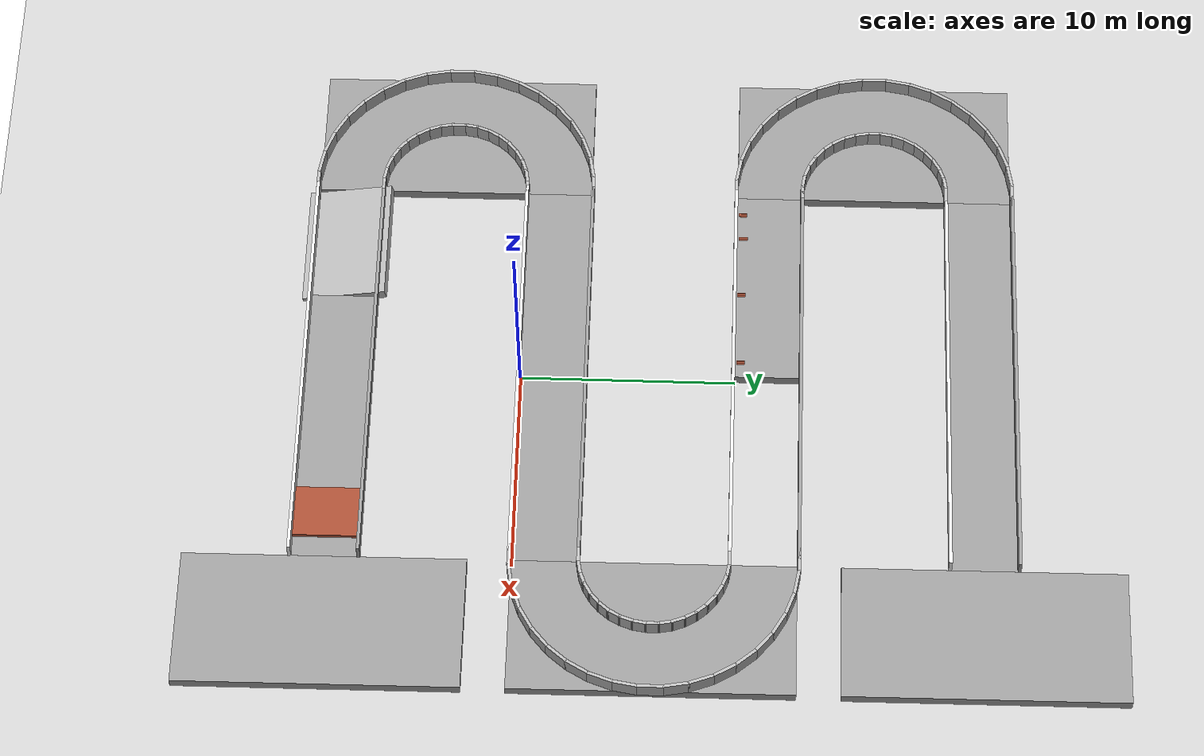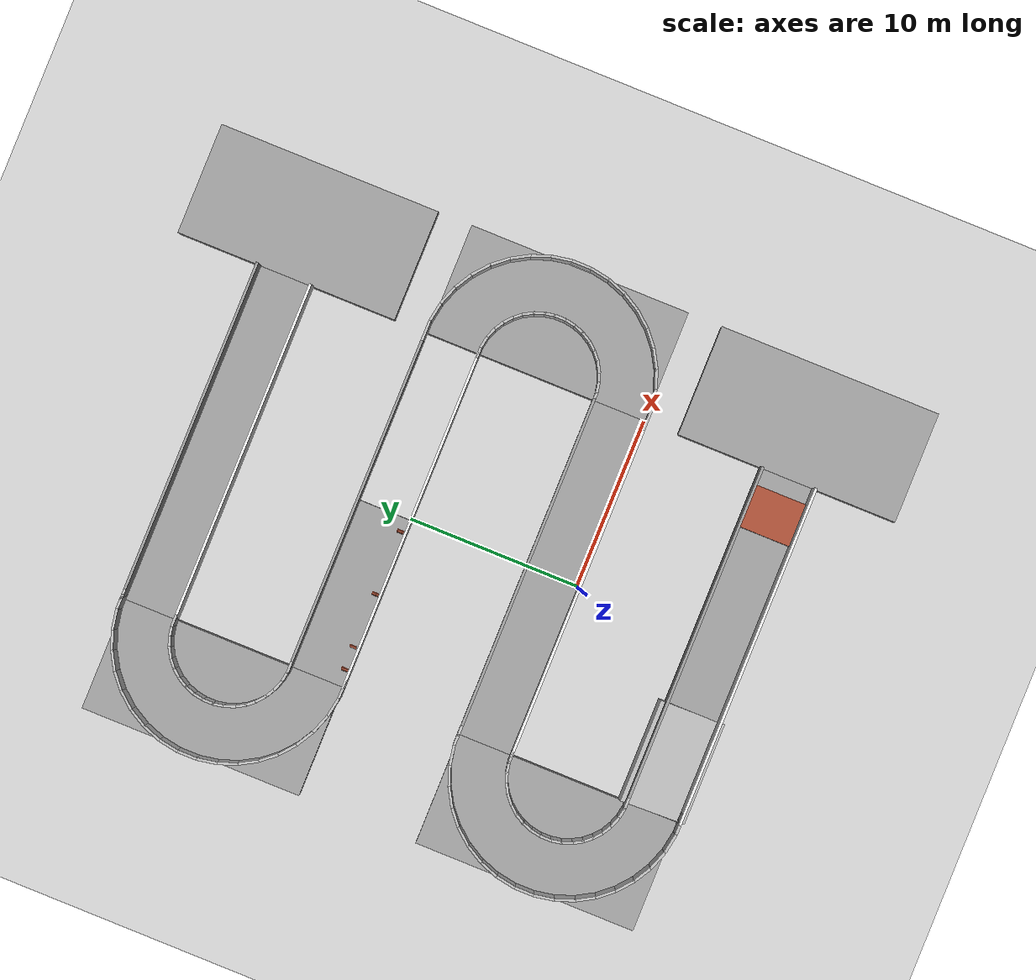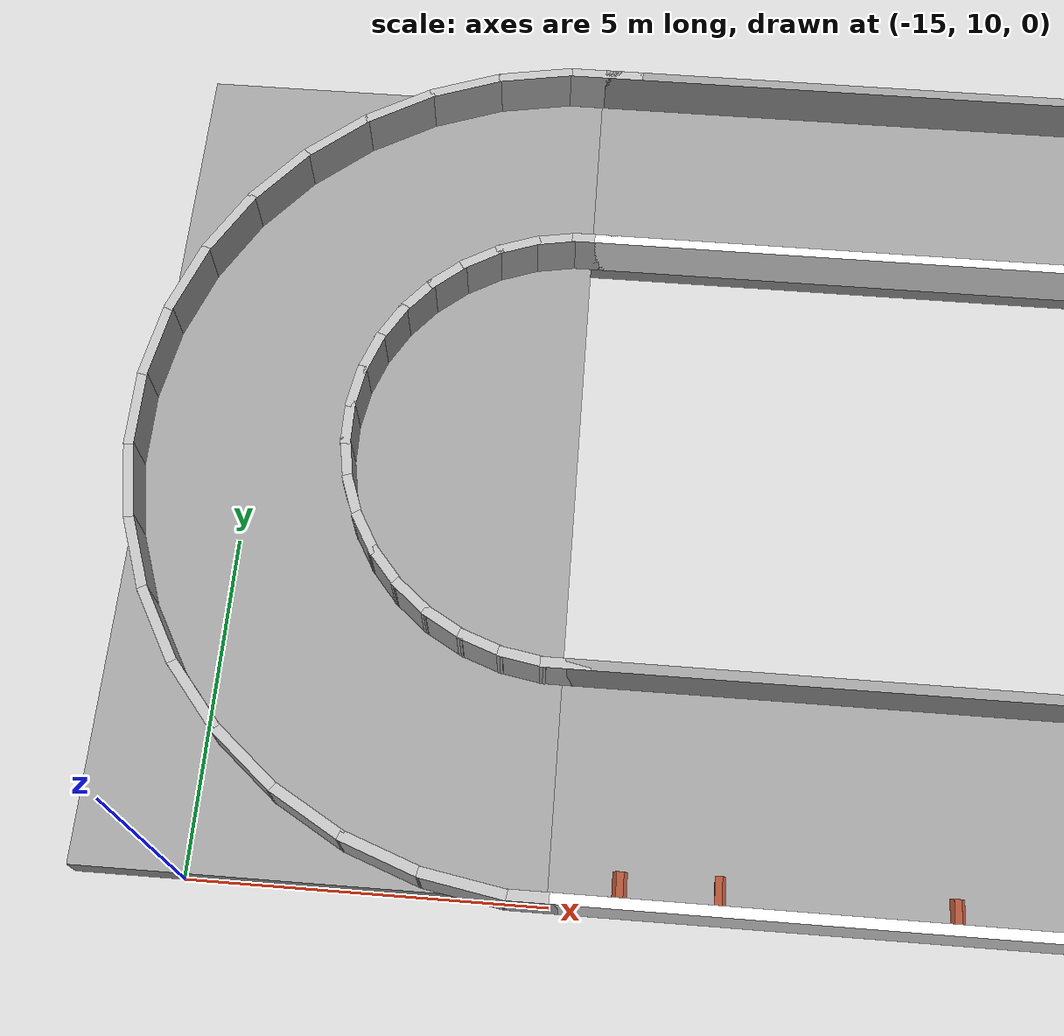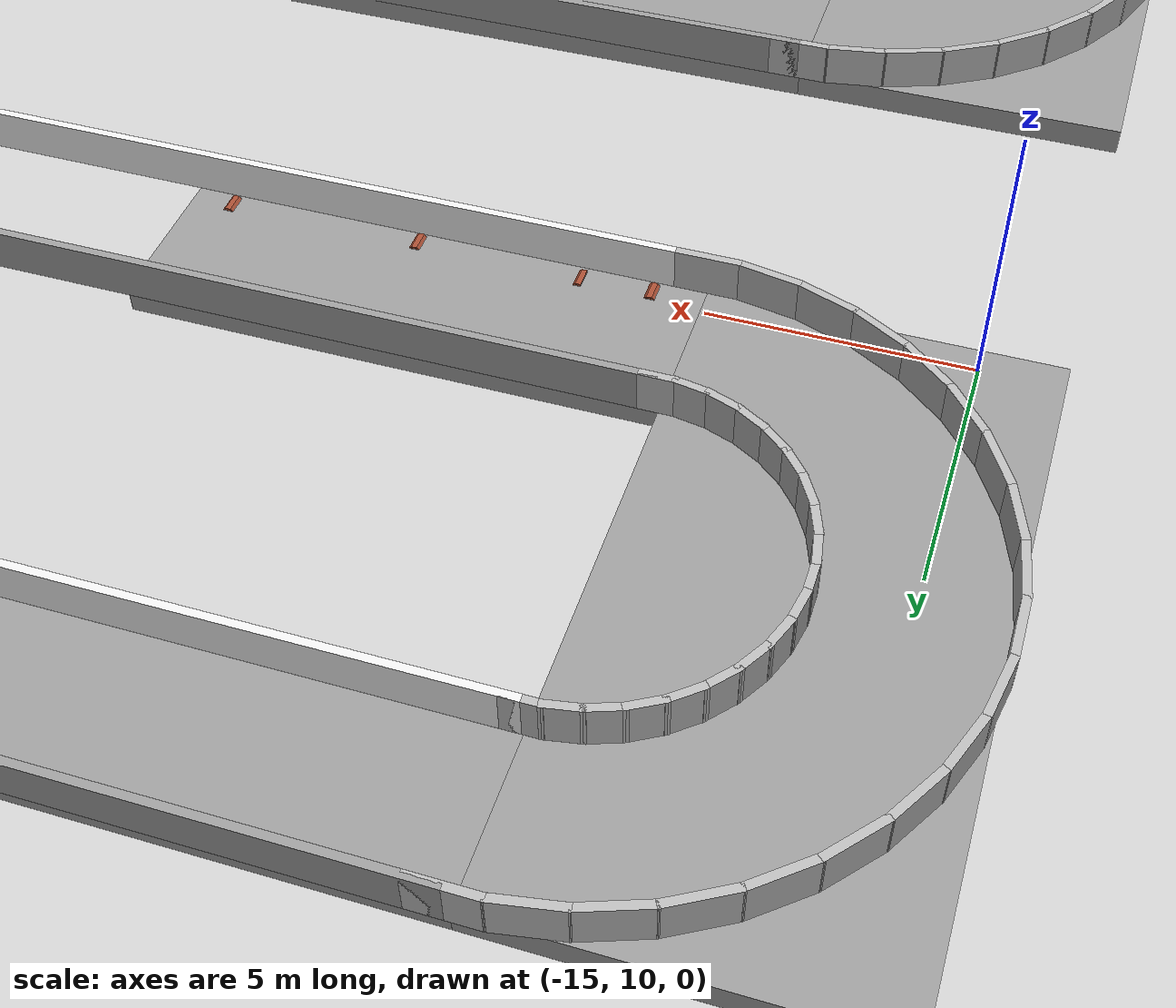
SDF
<sdf version="1.7">
 <world name="default">
  <model name="ground_plane">
   <static>1</static>
   <link name="link">
    <collision name="collision">
     <geometry><plane><normal>0 0 1</normal><size>100 100</size></plane></geometry>
     <surface><friction><ode><mu>100</mu><mu2>50</mu2></ode></friction></surface>
    </collision>
    <visual name="visual">
     <cast_shadows>0</cast_shadows>
     <geometry><plane><normal>0 0 1</normal><size>100 100</size></plane></geometry>
     <material>
      <script><uri>file://media/materials/scripts/gazebo.material</uri><name>Gazebo/Grey</name></script>
     </material>
    </visual>
   </link>
  </model>
  <model name="ika">
   <pose>0 -8.5 0.5 0 -0 0</pose>
   <static>1</static>
   <link name="Wall_1_0">
    <collision name="Wall_4_Collision">
     <geometry><box><size>20 0.15 0.8</size></box></geometry>
     <pose>0 0 0.4 0 -0 0</pose>
    </collision>
    <visual name="Wall_4_Visual">
     <pose>0 0 0.4 0 -0 0</pose>
     <geometry><box><size>20 0.15 0.8</size></box></geometry>
     <material>
      <script><uri>file://media/materials/scripts/gazebo.material</uri><name>Gazebo/Grey</name></script>
      <ambient>1 1 1 1</ambient>
     </material>
     <meta><layer>0</layer></meta>
    </visual>
    <pose>-0 1.575 0 0 -0 0</pose>
   </link>
   <link name="Wall_1_1">
    <collision name="Wall_7_Collision">
     <geometry><box><size>20 0.15 0.8</size></box></geometry>
     <pose>0 0 0.4 0 -0 0</pose>
    </collision>
    <visual name="Wall_7_Visual">
     <pose>0 0 0.4 0 -0 0</pose>
     <geometry><box><size>20 0.15 0.8</size></box></geometry>
     <material>
      <script><uri>file://media/materials/scripts/gazebo.material</uri><name>Gazebo/White</name></script>
      <ambient>1 1 1 1</ambient>
     </material>
     <meta><layer>0</layer></meta>
    </visual>
    <pose>-0 -1.575 0 0 -0 0</pose>
   </link>
   <link name="link_0">
    <pose>-10 11.575 0.4 0 -0 1.5708</pose>
    <collision name="col1"><geometry><box><size>0.15 1.2 0.8</size></box></geometry></collision>
    <visual name="vis1"><geometry><box><size>0.15 1.2 0.8</size></box></geometry></visual>
   </link>
   <link name="link_1">
    <pose>-11.1418 11.4751 0.4 0 -0 1.74533</pose>
    <collision name="col1"><geometry><box><size>0.15 1.2 0.8</size></box></geometry></collision>
    <visual name="vis1"><geometry><box><size>0.15 1.2 0.8</size></box></geometry></visual>
   </link>
   <link name="link_2">
    <pose>-12.2488 11.1785 0.4 0 -0 1.91987</pose>
    <collision name="col1"><geometry><box><size>0.15 1.2 0.8</size></box></geometry></collision>
    <visual name="vis1"><geometry><box><size>0.15 1.2 0.8</size></box></geometry></visual>
   </link>
   <link name="link_3">
    <pose>-13.2875 10.6941 0.4 0 -0 2.0944</pose>
    <collision name="col1"><geometry><box><size>0.15 1.2 0.8</size></box></geometry></collision>
    <visual name="vis1"><geometry><box><size>0.15 1.2 0.8</size></box></geometry></visual>
   </link>
   <link name="link_4">
    <pose>-14.2264 10.0367 0.4 0 -0 2.26893</pose>
    <collision name="col1"><geometry><box><size>0.15 1.2 0.8</size></box></geometry></collision>
    <visual name="vis1"><geometry><box><size>0.15 1.2 0.8</size></box></geometry></visual>
   </link>
   <link name="link_5">
    <pose>-15.0368 9.2263 0.4 0 -0 2.44347</pose>
    <collision name="col1"><geometry><box><size>0.15 1.2 0.8</size></box></geometry></collision>
    <visual name="vis1"><geometry><box><size>0.15 1.2 0.8</size></box></geometry></visual>
   </link>
   <link name="link_6">
    <pose>-15.6941 8.28746 0.4 0 -0 2.618</pose>
    <collision name="col1"><geometry><box><size>0.15 1.2 0.8</size></box></geometry></collision>
    <visual name="vis1"><geometry><box><size>0.15 1.2 0.8</size></box></geometry></visual>
   </link>
   <link name="link_7">
    <pose>-16.1785 7.24874 0.4 0 -0 2.79253</pose>
    <collision name="col1"><geometry><box><size>0.15 1.2 0.8</size></box></geometry></collision>
    <visual name="vis1"><geometry><box><size>0.15 1.2 0.8</size></box></geometry></visual>
   </link>
   <link name="link_8">
    <pose>-16.4751 6.14169 0.4 0 -0 2.96707</pose>
    <collision name="col1"><geometry><box><size>0.15 1.2 0.8</size></box></geometry></collision>
    <visual name="vis1"><geometry><box><size>0.15 1.2 0.8</size></box></geometry></visual>
   </link>
   <link name="link_9">
    <pose>-16.575 4.99995 0.4 0 -0 -3.14159</pose>
    <collision name="col1"><geometry><box><size>0.15 1.2 0.8</size></box></geometry></collision>
    <visual name="vis1"><geometry><box><size>0.15 1.2 0.8</size></box></geometry></visual>
   </link>
   <link name="link_10">
    <pose>-16.4751 3.85821 0.4 0 -0 -2.96705</pose>
    <collision name="col1"><geometry><box><size>0.15 1.2 0.8</size></box></geometry></collision>
    <visual name="vis1"><geometry><box><size>0.15 1.2 0.8</size></box></geometry></visual>
   </link>
   <link name="link_11">
    <pose>-16.1785 2.75117 0.4 0 -0 -2.79252</pose>
    <collision name="col1"><geometry><box><size>0.15 1.2 0.8</size></box></geometry></collision>
    <visual name="vis1"><geometry><box><size>0.15 1.2 0.8</size></box></geometry></visual>
   </link>
   <link name="link_12">
    <pose>-15.6941 1.71245 0.4 0 -0 -2.61799</pose>
    <collision name="col1"><geometry><box><size>0.15 1.2 0.8</size></box></geometry></collision>
    <visual name="vis1"><geometry><box><size>0.15 1.2 0.8</size></box></geometry></visual>
   </link>
   <link name="link_13">
    <pose>-15.0367 0.773626 0.4 0 -0 -2.44345</pose>
    <collision name="col1"><geometry><box><size>0.15 1.2 0.8</size></box></geometry></collision>
    <visual name="vis1"><geometry><box><size>0.15 1.2 0.8</size></box></geometry></visual>
   </link>
   <link name="link_14">
    <pose>-14.2263 -0.036782 0.4 0 -0 -2.26892</pose>
    <collision name="col1"><geometry><box><size>0.15 1.2 0.8</size></box></geometry></collision>
    <visual name="vis1"><geometry><box><size>0.15 1.2 0.8</size></box></geometry></visual>
   </link>
   <link name="link_15">
    <pose>-13.2874 -0.694149 0.4 0 -0 -2.09438</pose>
    <collision name="col1"><geometry><box><size>0.15 1.2 0.8</size></box></geometry></collision>
    <visual name="vis1"><geometry><box><size>0.15 1.2 0.8</size></box></geometry></visual>
   </link>
   <link name="link_16">
    <pose>-12.2487 -1.1785 0.4 0 -0 -1.91985</pose>
    <collision name="col1"><geometry><box><size>0.15 1.2 0.8</size></box></geometry></collision>
    <visual name="vis1"><geometry><box><size>0.15 1.2 0.8</size></box></geometry></visual>
   </link>
   <link name="link_17">
    <pose>-11.1417 -1.47512 0.4 0 -0 -1.74532</pose>
    <collision name="col1"><geometry><box><size>0.15 1.2 0.8</size></box></geometry></collision>
    <visual name="vis1"><geometry><box><size>0.15 1.2 0.8</size></box></geometry></visual>
   </link>
   <link name="link_18">
    <pose>-9.99993 -1.575 0.4 0 -0 -1.57079</pose>
    <collision name="col1"><geometry><box><size>0.15 1.2 0.8</size></box></geometry></collision>
    <visual name="vis1"><geometry><box><size>0.15 1.2 0.8</size></box></geometry></visual>
   </link>
   <link name="link_s1_0">
    <pose>-10 8.425 0.4 0 -0 1.5708</pose>
    <collision name="col1"><geometry><box><size>0.15 0.7 0.8</size></box></geometry></collision>
    <visual name="vis1"><geometry><box><size>0.15 0.7 0.8</size></box></geometry></visual>
   </link>
   <link name="link_s1_1">
    <pose>-10.5948 8.37296 0.4 0 -0 1.74533</pose>
    <collision name="col1"><geometry><box><size>0.15 0.7 0.8</size></box></geometry></collision>
    <visual name="vis1"><geometry><box><size>0.15 0.7 0.8</size></box></geometry></visual>
   </link>
   <link name="link_s1_2">
    <pose>-11.1714 8.21844 0.4 0 -0 1.91987</pose>
    <collision name="col1"><geometry><box><size>0.15 0.7 0.8</size></box></geometry></collision>
    <visual name="vis1"><geometry><box><size>0.15 0.7 0.8</size></box></geometry></visual>
   </link>
   <link name="link_s1_3">
    <pose>-11.7125 7.96613 0.4 0 -0 2.0944</pose>
    <collision name="col1"><geometry><box><size>0.15 0.7 0.8</size></box></geometry></collision>
    <visual name="vis1"><geometry><box><size>0.15 0.7 0.8</size></box></geometry></visual>
   </link>
   <link name="link_s1_4">
    <pose>-12.2016 7.62369 0.4 0 -0 2.26893</pose>
    <collision name="col1"><geometry><box><size>0.15 0.7 0.8</size></box></geometry></collision>
    <visual name="vis1"><geometry><box><size>0.15 0.7 0.8</size></box></geometry></visual>
   </link>
   <link name="link_s1_5">
    <pose>-12.6237 7.20153 0.4 0 -0 2.44347</pose>
    <collision name="col1"><geometry><box><size>0.15 0.7 0.8</size></box></geometry></collision>
    <visual name="vis1"><geometry><box><size>0.15 0.7 0.8</size></box></geometry></visual>
   </link>
   <link name="link_s1_6">
    <pose>-12.9661 6.71248 0.4 0 -0 2.618</pose>
    <collision name="col1"><geometry><box><size>0.15 0.7 0.8</size></box></geometry></collision>
    <visual name="vis1"><geometry><box><size>0.15 0.7 0.8</size></box></geometry></visual>
   </link>
   <link name="link_s1_7">
    <pose>-13.2185 6.1714 0.4 0 -0 2.79253</pose>
    <collision name="col1"><geometry><box><size>0.15 0.7 0.8</size></box></geometry></collision>
    <visual name="vis1"><geometry><box><size>0.15 0.7 0.8</size></box></geometry></visual>
   </link>
   <link name="link_s1_8">
    <pose>-13.373 5.59472 0.4 0 -0 2.96707</pose>
    <collision name="col1"><geometry><box><size>0.15 0.7 0.8</size></box></geometry></collision>
    <visual name="vis1"><geometry><box><size>0.15 0.7 0.8</size></box></geometry></visual>
   </link>
   <link name="link_s1_9">
    <pose>-13.425 4.99998 0.4 0 -0 -3.14159</pose>
    <collision name="col1"><geometry><box><size>0.15 0.7 0.8</size></box></geometry></collision>
    <visual name="vis1"><geometry><box><size>0.15 0.7 0.8</size></box></geometry></visual>
   </link>
   <link name="link_s1_10">
    <pose>-13.373 4.40523 0.4 0 -0 -2.96705</pose>
    <collision name="col1"><geometry><box><size>0.15 0.7 0.8</size></box></geometry></collision>
    <visual name="vis1"><geometry><box><size>0.15 0.7 0.8</size></box></geometry></visual>
   </link>
   <link name="link_s1_11">
    <pose>-13.2184 3.82856 0.4 0 -0 -2.79252</pose>
    <collision name="col1"><geometry><box><size>0.15 0.7 0.8</size></box></geometry></collision>
    <visual name="vis1"><geometry><box><size>0.15 0.7 0.8</size></box></geometry></visual>
   </link>
   <link name="link_s1_12">
    <pose>-12.9661 3.28748 0.4 0 -0 -2.61799</pose>
    <collision name="col1"><geometry><box><size>0.15 0.7 0.8</size></box></geometry></collision>
    <visual name="vis1"><geometry><box><size>0.15 0.7 0.8</size></box></geometry></visual>
   </link>
   <link name="link_s1_13">
    <pose>-12.6237 2.79843 0.4 0 -0 -2.44345</pose>
    <collision name="col1"><geometry><box><size>0.15 0.7 0.8</size></box></geometry></collision>
    <visual name="vis1"><geometry><box><size>0.15 0.7 0.8</size></box></geometry></visual>
   </link>
   <link name="link_s1_14">
    <pose>-12.2015 2.37628 0.4 0 -0 -2.26892</pose>
    <collision name="col1"><geometry><box><size>0.15 0.7 0.8</size></box></geometry></collision>
    <visual name="vis1"><geometry><box><size>0.15 0.7 0.8</size></box></geometry></visual>
   </link>
   <link name="link_s1_15">
    <pose>-11.7125 2.03385 0.4 0 -0 -2.09438</pose>
    <collision name="col1"><geometry><box><size>0.15 0.7 0.8</size></box></geometry></collision>
    <visual name="vis1"><geometry><box><size>0.15 0.7 0.8</size></box></geometry></visual>
   </link>
   <link name="link_s1_16">
    <pose>-11.1714 1.78154 0.4 0 -0 -1.91985</pose>
    <collision name="col1"><geometry><box><size>0.15 0.7 0.8</size></box></geometry></collision>
    <visual name="vis1"><geometry><box><size>0.15 0.7 0.8</size></box></geometry></visual>
   </link>
   <link name="link_s1_17">
    <pose>-10.5947 1.62703 0.4 0 -0 -1.74532</pose>
    <collision name="col1"><geometry><box><size>0.15 0.7 0.8</size></box></geometry></collision>
    <visual name="vis1"><geometry><box><size>0.15 0.7 0.8</size></box></geometry></visual>
   </link>
   <link name="link_s1_18">
    <pose>-9.99996 1.575 0.4 0 -0 -1.57079</pose>
    <collision name="col1"><geometry><box><size>0.15 0.7 0.8</size></box></geometry></collision>
    <visual name="vis1"><geometry><box><size>0.15 0.7 0.8</size></box></geometry></visual>
   </link>
   <link name="Wall_2_0">
    <pose>-0 11.575 0 0 -0 0</pose>
    <collision name="Wall_4_Collision">
     <geometry><box><size>20 0.15 0.8</size></box></geometry>
     <pose>0 0 0.4 0 -0 0</pose>
    </collision>
    <visual name="Wall_4_Visual">
     <pose>0 0 0.4 0 -0 0</pose>
     <geometry><box><size>20 0.15 0.8</size></box></geometry>
     <material>
      <script><uri>file://media/materials/scripts/gazebo.material</uri><name>Gazebo/Grey</name></script>
      <ambient>1 1 1 1</ambient>
     </material>
     <meta><layer>0</layer></meta>
    </visual>
   </link>
   <link name="Wall_2_1">
    <pose>-0 8.425 0 0 -0 0</pose>
    <collision name="Wall_7_Collision">
     <geometry><box><size>20 0.15 0.8</size></box></geometry>
     <pose>0 0 0.4 0 -0 0</pose>
    </collision>
    <visual name="Wall_7_Visual">
     <pose>0 0 0.4 0 -0 0</pose>
     <geometry><box><size>20 0.15 0.8</size></box></geometry>
     <material>
      <script><uri>file://media/materials/scripts/gazebo.material</uri><name>Gazebo/White</name></script>
      <ambient>1 1 1 1</ambient>
     </material>
     <meta><layer>0</layer></meta>
    </visual>
   </link>
   <link name="link_s2_0">
    <pose>9.99999 11.575 0.4 0 0 -1.5708</pose>
    <collision name="col1"><geometry><box><size>0.15 0.7 0.8</size></box></geometry></collision>
    <visual name="vis1"><geometry><box><size>0.15 0.7 0.8</size></box></geometry></visual>
   </link>
   <link name="link_s2_1">
    <pose>10.5947 11.627 0.4 0 0 -1.39627</pose>
    <collision name="col1"><geometry><box><size>0.15 0.7 0.8</size></box></geometry></collision>
    <visual name="vis1"><geometry><box><size>0.15 0.7 0.8</size></box></geometry></visual>
   </link>
   <link name="link_s2_2">
    <pose>11.1714 11.7815 0.4 0 0 -1.22173</pose>
    <collision name="col1"><geometry><box><size>0.15 0.7 0.8</size></box></geometry></collision>
    <visual name="vis1"><geometry><box><size>0.15 0.7 0.8</size></box></geometry></visual>
   </link>
   <link name="link_s2_3">
    <pose>11.7125 12.0339 0.4 0 0 -1.0472</pose>
    <collision name="col1"><geometry><box><size>0.15 0.7 0.8</size></box></geometry></collision>
    <visual name="vis1"><geometry><box><size>0.15 0.7 0.8</size></box></geometry></visual>
   </link>
   <link name="link_s2_4">
    <pose>12.2015 12.3763 0.4 0 0 -0.872667</pose>
    <collision name="col1"><geometry><box><size>0.15 0.7 0.8</size></box></geometry></collision>
    <visual name="vis1"><geometry><box><size>0.15 0.7 0.8</size></box></geometry></visual>
   </link>
   <link name="link_s2_5">
    <pose>12.6237 12.7984 0.4 0 0 -0.698133</pose>
    <collision name="col1"><geometry><box><size>0.15 0.7 0.8</size></box></geometry></collision>
    <visual name="vis1"><geometry><box><size>0.15 0.7 0.8</size></box></geometry></visual>
   </link>
   <link name="link_s2_6">
    <pose>12.9661 13.2875 0.4 0 0 -0.5236</pose>
    <collision name="col1"><geometry><box><size>0.15 0.7 0.8</size></box></geometry></collision>
    <visual name="vis1"><geometry><box><size>0.15 0.7 0.8</size></box></geometry></visual>
   </link>
   <link name="link_s2_7">
    <pose>13.2184 13.8286 0.4 0 0 -0.349067</pose>
    <collision name="col1"><geometry><box><size>0.15 0.7 0.8</size></box></geometry></collision>
    <visual name="vis1"><geometry><box><size>0.15 0.7 0.8</size></box></geometry></visual>
   </link>
   <link name="link_s2_8">
    <pose>13.373 14.4053 0.4 0 0 -0.174533</pose>
    <collision name="col1"><geometry><box><size>0.15 0.7 0.8</size></box></geometry></collision>
    <visual name="vis1"><geometry><box><size>0.15 0.7 0.8</size></box></geometry></visual>
   </link>
   <link name="link_s2_9">
    <pose>13.425 15 0.4 0 -0 0</pose>
    <collision name="col1"><geometry><box><size>0.15 0.7 0.8</size></box></geometry></collision>
    <visual name="vis1"><geometry><box><size>0.15 0.7 0.8</size></box></geometry></visual>
   </link>
   <link name="link_s2_10">
    <pose>13.373 15.5947 0.4 0 -0 0.174533</pose>
    <collision name="col1"><geometry><box><size>0.15 0.7 0.8</size></box></geometry></collision>
    <visual name="vis1"><geometry><box><size>0.15 0.7 0.8</size></box></geometry></visual>
   </link>
   <link name="link_s2_11">
    <pose>13.2184 16.1714 0.4 0 -0 0.349067</pose>
    <collision name="col1"><geometry><box><size>0.15 0.7 0.8</size></box></geometry></collision>
    <visual name="vis1"><geometry><box><size>0.15 0.7 0.8</size></box></geometry></visual>
   </link>
   <link name="link_s2_12">
    <pose>12.9661 16.7125 0.4 0 -0 0.5236</pose>
    <collision name="col1"><geometry><box><size>0.15 0.7 0.8</size></box></geometry></collision>
    <visual name="vis1"><geometry><box><size>0.15 0.7 0.8</size></box></geometry></visual>
   </link>
   <link name="link_s2_13">
    <pose>12.6237 17.2016 0.4 0 -0 0.698133</pose>
    <collision name="col1"><geometry><box><size>0.15 0.7 0.8</size></box></geometry></collision>
    <visual name="vis1"><geometry><box><size>0.15 0.7 0.8</size></box></geometry></visual>
   </link>
   <link name="link_s2_14">
    <pose>12.2015 17.6237 0.4 0 -0 0.872667</pose>
    <collision name="col1"><geometry><box><size>0.15 0.7 0.8</size></box></geometry></collision>
    <visual name="vis1"><geometry><box><size>0.15 0.7 0.8</size></box></geometry></visual>
   </link>
   <link name="link_s2_15">
    <pose>11.7125 17.9661 0.4 0 -0 1.0472</pose>
    <collision name="col1"><geometry><box><size>0.15 0.7 0.8</size></box></geometry></collision>
    <visual name="vis1"><geometry><box><size>0.15 0.7 0.8</size></box></geometry></visual>
   </link>
   <link name="link_s2_16">
    <pose>11.1714 18.2185 0.4 0 -0 1.22173</pose>
    <collision name="col1"><geometry><box><size>0.15 0.7 0.8</size></box></geometry></collision>
    <visual name="vis1"><geometry><box><size>0.15 0.7 0.8</size></box></geometry></visual>
   </link>
   <link name="link_s2_17">
    <pose>10.5947 18.373 0.4 0 -0 1.39627</pose>
    <collision name="col1"><geometry><box><size>0.15 0.7 0.8</size></box></geometry></collision>
    <visual name="vis1"><geometry><box><size>0.15 0.7 0.8</size></box></geometry></visual>
   </link>
   <link name="link_s2_18">
    <pose>9.99999 18.425 0.4 0 -0 1.5708</pose>
    <collision name="col1"><geometry><box><size>0.15 0.7 0.8</size></box></geometry></collision>
    <visual name="vis1"><geometry><box><size>0.15 0.7 0.8</size></box></geometry></visual>
   </link>
   <link name="link_l2_0">
    <pose>9.99998 8.425 0.4 0 0 -1.5708</pose>
    <collision name="col1"><geometry><box><size>0.15 1.2 0.8</size></box></geometry></collision>
    <visual name="vis1"><geometry><box><size>0.15 1.2 0.8</size></box></geometry></visual>
   </link>
   <link name="link_l2_1">
    <pose>11.1417 8.52488 0.4 0 0 -1.39627</pose>
    <collision name="col1"><geometry><box><size>0.15 1.2 0.8</size></box></geometry></collision>
    <visual name="vis1"><geometry><box><size>0.15 1.2 0.8</size></box></geometry></visual>
   </link>
   <link name="link_l2_2">
    <pose>12.2488 8.82151 0.4 0 0 -1.22173</pose>
    <collision name="col1"><geometry><box><size>0.15 1.2 0.8</size></box></geometry></collision>
    <visual name="vis1"><geometry><box><size>0.15 1.2 0.8</size></box></geometry></visual>
   </link>
   <link name="link_l2_3">
    <pose>13.2875 9.30588 0.4 0 0 -1.0472</pose>
    <collision name="col1"><geometry><box><size>0.15 1.2 0.8</size></box></geometry></collision>
    <visual name="vis1"><geometry><box><size>0.15 1.2 0.8</size></box></geometry></visual>
   </link>
   <link name="link_l2_4">
    <pose>14.2263 9.96325 0.4 0 0 -0.872667</pose>
    <collision name="col1"><geometry><box><size>0.15 1.2 0.8</size></box></geometry></collision>
    <visual name="vis1"><geometry><box><size>0.15 1.2 0.8</size></box></geometry></visual>
   </link>
   <link name="link_l2_5">
    <pose>15.0367 10.7737 0.4 0 0 -0.698133</pose>
    <collision name="col1"><geometry><box><size>0.15 1.2 0.8</size></box></geometry></collision>
    <visual name="vis1"><geometry><box><size>0.15 1.2 0.8</size></box></geometry></visual>
   </link>
   <link name="link_l2_6">
    <pose>15.6941 11.7125 0.4 0 0 -0.5236</pose>
    <collision name="col1"><geometry><box><size>0.15 1.2 0.8</size></box></geometry></collision>
    <visual name="vis1"><geometry><box><size>0.15 1.2 0.8</size></box></geometry></visual>
   </link>
   <link name="link_l2_7">
    <pose>16.1785 12.7512 0.4 0 0 -0.349067</pose>
    <collision name="col1"><geometry><box><size>0.15 1.2 0.8</size></box></geometry></collision>
    <visual name="vis1"><geometry><box><size>0.15 1.2 0.8</size></box></geometry></visual>
   </link>
   <link name="link_l2_8">
    <pose>16.4751 13.8583 0.4 0 0 -0.174533</pose>
    <collision name="col1"><geometry><box><size>0.15 1.2 0.8</size></box></geometry></collision>
    <visual name="vis1"><geometry><box><size>0.15 1.2 0.8</size></box></geometry></visual>
   </link>
   <link name="link_l2_9">
    <pose>16.575 15 0.4 0 -0 0</pose>
    <collision name="col1"><geometry><box><size>0.15 1.2 0.8</size></box></geometry></collision>
    <visual name="vis1"><geometry><box><size>0.15 1.2 0.8</size></box></geometry></visual>
   </link>
   <link name="link_l2_10">
    <pose>16.4751 16.1417 0.4 0 -0 0.174533</pose>
    <collision name="col1"><geometry><box><size>0.15 1.2 0.8</size></box></geometry></collision>
    <visual name="vis1"><geometry><box><size>0.15 1.2 0.8</size></box></geometry></visual>
   </link>
   <link name="link_l2_11">
    <pose>16.1785 17.2488 0.4 0 -0 0.349067</pose>
    <collision name="col1"><geometry><box><size>0.15 1.2 0.8</size></box></geometry></collision>
    <visual name="vis1"><geometry><box><size>0.15 1.2 0.8</size></box></geometry></visual>
   </link>
   <link name="link_l2_12">
    <pose>15.6941 18.2875 0.4 0 -0 0.5236</pose>
    <collision name="col1"><geometry><box><size>0.15 1.2 0.8</size></box></geometry></collision>
    <visual name="vis1"><geometry><box><size>0.15 1.2 0.8</size></box></geometry></visual>
   </link>
   <link name="link_l2_13">
    <pose>15.0367 19.2263 0.4 0 -0 0.698133</pose>
    <collision name="col1"><geometry><box><size>0.15 1.2 0.8</size></box></geometry></collision>
    <visual name="vis1"><geometry><box><size>0.15 1.2 0.8</size></box></geometry></visual>
   </link>
   <link name="link_l2_14">
    <pose>14.2263 20.0368 0.4 0 -0 0.872667</pose>
    <collision name="col1"><geometry><box><size>0.15 1.2 0.8</size></box></geometry></collision>
    <visual name="vis1"><geometry><box><size>0.15 1.2 0.8</size></box></geometry></visual>
   </link>
   <link name="link_l2_15">
    <pose>13.2875 20.6941 0.4 0 -0 1.0472</pose>
    <collision name="col1"><geometry><box><size>0.15 1.2 0.8</size></box></geometry></collision>
    <visual name="vis1"><geometry><box><size>0.15 1.2 0.8</size></box></geometry></visual>
   </link>
   <link name="link_l2_16">
    <pose>12.2488 21.1785 0.4 0 -0 1.22173</pose>
    <collision name="col1"><geometry><box><size>0.15 1.2 0.8</size></box></geometry></collision>
    <visual name="vis1"><geometry><box><size>0.15 1.2 0.8</size></box></geometry></visual>
   </link>
   <link name="link_l2_17">
    <pose>11.1417 21.4751 0.4 0 -0 1.39627</pose>
    <collision name="col1"><geometry><box><size>0.15 1.2 0.8</size></box></geometry></collision>
    <visual name="vis1"><geometry><box><size>0.15 1.2 0.8</size></box></geometry></visual>
   </link>
   <link name="link_l2_18">
    <pose>9.99998 21.575 0.4 0 -0 1.5708</pose>
    <collision name="col1"><geometry><box><size>0.15 1.2 0.8</size></box></geometry></collision>
    <visual name="vis1"><geometry><box><size>0.15 1.2 0.8</size></box></geometry></visual>
   </link>
   <link name="Wall_3_0">
    <pose>-0 21.575 0 0 -0 0</pose>
    <collision name="Wall_4_Collision">
     <geometry><box><size>20 0.15 0.8</size></box></geometry>
     <pose>0 0 0.4 0 -0 0</pose>
    </collision>
    <visual name="Wall_4_Visual">
     <pose>0 0 0.4 0 -0 0</pose>
     <geometry><box><size>20 0.15 0.8</size></box></geometry>
     <material>
      <script><uri>file://media/materials/scripts/gazebo.material</uri><name>Gazebo/Grey</name></script>
      <ambient>1 1 1 1</ambient>
     </material>
     <meta><layer>0</layer></meta>
    </visual>
   </link>
   <link name="Wall_3_1">
    <pose>-0 18.425 0 0 -0 0</pose>
    <collision name="Wall_7_Collision">
     <geometry><box><size>20 0.15 0.8</size></box></geometry>
     <pose>0 0 0.4 0 -0 0</pose>
    </collision>
    <visual name="Wall_7_Visual">
     <pose>0 0 0.4 0 -0 0</pose>
     <geometry><box><size>20 0.15 0.8</size></box></geometry>
     <material>
      <script><uri>file://media/materials/scripts/gazebo.material</uri><name>Gazebo/White</name></script>
      <ambient>1 1 1 1</ambient>
     </material>
     <meta><layer>0</layer></meta>
    </visual>
   </link>
   <link name="link_l3_0">
    <pose>-10 31.575 0.4 0 -0 1.5708</pose>
    <collision name="col1"><geometry><box><size>0.15 1.2 0.8</size></box></geometry></collision>
    <visual name="vis1"><geometry><box><size>0.15 1.2 0.8</size></box></geometry></visual>
   </link>
   <link name="link_l3_1">
    <pose>-11.1418 31.4751 0.4 0 -0 1.74533</pose>
    <collision name="col1"><geometry><box><size>0.15 1.2 0.8</size></box></geometry></collision>
    <visual name="vis1"><geometry><box><size>0.15 1.2 0.8</size></box></geometry></visual>
   </link>
   <link name="link_l3_2">
    <pose>-12.2488 31.1785 0.4 0 -0 1.91987</pose>
    <collision name="col1"><geometry><box><size>0.15 1.2 0.8</size></box></geometry></collision>
    <visual name="vis1"><geometry><box><size>0.15 1.2 0.8</size></box></geometry></visual>
   </link>
   <link name="link_l3_3">
    <pose>-13.2875 30.6941 0.4 0 -0 2.0944</pose>
    <collision name="col1"><geometry><box><size>0.15 1.2 0.8</size></box></geometry></collision>
    <visual name="vis1"><geometry><box><size>0.15 1.2 0.8</size></box></geometry></visual>
   </link>
   <link name="link_l3_4">
    <pose>-14.2264 30.0367 0.4 0 -0 2.26893</pose>
    <collision name="col1"><geometry><box><size>0.15 1.2 0.8</size></box></geometry></collision>
    <visual name="vis1"><geometry><box><size>0.15 1.2 0.8</size></box></geometry></visual>
   </link>
   <link name="link_l3_5">
    <pose>-15.0368 29.2263 0.4 0 -0 2.44347</pose>
    <collision name="col1"><geometry><box><size>0.15 1.2 0.8</size></box></geometry></collision>
    <visual name="vis1"><geometry><box><size>0.15 1.2 0.8</size></box></geometry></visual>
   </link>
   <link name="link_l3_6">
    <pose>-15.6941 28.2875 0.4 0 -0 2.618</pose>
    <collision name="col1"><geometry><box><size>0.15 1.2 0.8</size></box></geometry></collision>
    <visual name="vis1"><geometry><box><size>0.15 1.2 0.8</size></box></geometry></visual>
   </link>
   <link name="link_l3_7">
    <pose>-16.1785 27.2487 0.4 0 -0 2.79253</pose>
    <collision name="col1"><geometry><box><size>0.15 1.2 0.8</size></box></geometry></collision>
    <visual name="vis1"><geometry><box><size>0.15 1.2 0.8</size></box></geometry></visual>
   </link>
   <link name="link_l3_8">
    <pose>-16.4751 26.1417 0.4 0 -0 2.96707</pose>
    <collision name="col1"><geometry><box><size>0.15 1.2 0.8</size></box></geometry></collision>
    <visual name="vis1"><geometry><box><size>0.15 1.2 0.8</size></box></geometry></visual>
   </link>
   <link name="link_l3_9">
    <pose>-16.575 25 0.4 0 -0 -3.14159</pose>
    <collision name="col1"><geometry><box><size>0.15 1.2 0.8</size></box></geometry></collision>
    <visual name="vis1"><geometry><box><size>0.15 1.2 0.8</size></box></geometry></visual>
   </link>
   <link name="link_l3_10">
    <pose>-16.4751 23.8582 0.4 0 -0 -2.96705</pose>
    <collision name="col1"><geometry><box><size>0.15 1.2 0.8</size></box></geometry></collision>
    <visual name="vis1"><geometry><box><size>0.15 1.2 0.8</size></box></geometry></visual>
   </link>
   <link name="link_l3_11">
    <pose>-16.1785 22.7512 0.4 0 -0 -2.79252</pose>
    <collision name="col1"><geometry><box><size>0.15 1.2 0.8</size></box></geometry></collision>
    <visual name="vis1"><geometry><box><size>0.15 1.2 0.8</size></box></geometry></visual>
   </link>
   <link name="link_l3_12">
    <pose>-15.6941 21.7125 0.4 0 -0 -2.61799</pose>
    <collision name="col1"><geometry><box><size>0.15 1.2 0.8</size></box></geometry></collision>
    <visual name="vis1"><geometry><box><size>0.15 1.2 0.8</size></box></geometry></visual>
   </link>
   <link name="link_l3_13">
    <pose>-15.0367 20.7736 0.4 0 -0 -2.44345</pose>
    <collision name="col1"><geometry><box><size>0.15 1.2 0.8</size></box></geometry></collision>
    <visual name="vis1"><geometry><box><size>0.15 1.2 0.8</size></box></geometry></visual>
   </link>
   <link name="link_l3_14">
    <pose>-14.2263 19.9632 0.4 0 -0 -2.26892</pose>
    <collision name="col1"><geometry><box><size>0.15 1.2 0.8</size></box></geometry></collision>
    <visual name="vis1"><geometry><box><size>0.15 1.2 0.8</size></box></geometry></visual>
   </link>
   <link name="link_l3_15">
    <pose>-13.2874 19.3059 0.4 0 -0 -2.09438</pose>
    <collision name="col1"><geometry><box><size>0.15 1.2 0.8</size></box></geometry></collision>
    <visual name="vis1"><geometry><box><size>0.15 1.2 0.8</size></box></geometry></visual>
   </link>
   <link name="link_l3_16">
    <pose>-12.2487 18.8215 0.4 0 -0 -1.91985</pose>
    <collision name="col1"><geometry><box><size>0.15 1.2 0.8</size></box></geometry></collision>
    <visual name="vis1"><geometry><box><size>0.15 1.2 0.8</size></box></geometry></visual>
   </link>
   <link name="link_l3_17">
    <pose>-11.1417 18.5249 0.4 0 -0 -1.74532</pose>
    <collision name="col1"><geometry><box><size>0.15 1.2 0.8</size></box></geometry></collision>
    <visual name="vis1"><geometry><box><size>0.15 1.2 0.8</size></box></geometry></visual>
   </link>
   <link name="link_l3_18">
    <pose>-9.99993 18.425 0.4 0 -0 -1.57079</pose>
    <collision name="col1"><geometry><box><size>0.15 1.2 0.8</size></box></geometry></collision>
    <visual name="vis1"><geometry><box><size>0.15 1.2 0.8</size></box></geometry></visual>
   </link>
   <link name="link_s3_0">
    <pose>-10 28.425 0.4 0 -0 1.5708</pose>
    <collision name="col1"><geometry><box><size>0.15 0.7 0.8</size></box></geometry></collision>
    <visual name="vis1"><geometry><box><size>0.15 0.7 0.8</size></box></geometry></visual>
   </link>
   <link name="link_s3_1">
    <pose>-10.5948 28.373 0.4 0 -0 1.74533</pose>
    <collision name="col1"><geometry><box><size>0.15 0.7 0.8</size></box></geometry></collision>
    <visual name="vis1"><geometry><box><size>0.15 0.7 0.8</size></box></geometry></visual>
   </link>
   <link name="link_s3_2">
    <pose>-11.1714 28.2184 0.4 0 -0 1.91987</pose>
    <collision name="col1"><geometry><box><size>0.15 0.7 0.8</size></box></geometry></collision>
    <visual name="vis1"><geometry><box><size>0.15 0.7 0.8</size></box></geometry></visual>
   </link>
   <link name="link_s3_3">
    <pose>-11.7125 27.9661 0.4 0 -0 2.0944</pose>
    <collision name="col1"><geometry><box><size>0.15 0.7 0.8</size></box></geometry></collision>
    <visual name="vis1"><geometry><box><size>0.15 0.7 0.8</size></box></geometry></visual>
   </link>
   <link name="link_s3_4">
    <pose>-12.2016 27.6237 0.4 0 -0 2.26893</pose>
    <collision name="col1"><geometry><box><size>0.15 0.7 0.8</size></box></geometry></collision>
    <visual name="vis1"><geometry><box><size>0.15 0.7 0.8</size></box></geometry></visual>
   </link>
   <link name="link_s3_5">
    <pose>-12.6237 27.2015 0.4 0 -0 2.44347</pose>
    <collision name="col1"><geometry><box><size>0.15 0.7 0.8</size></box></geometry></collision>
    <visual name="vis1"><geometry><box><size>0.15 0.7 0.8</size></box></geometry></visual>
   </link>
   <link name="link_s3_6">
    <pose>-12.9661 26.7125 0.4 0 -0 2.618</pose>
    <collision name="col1"><geometry><box><size>0.15 0.7 0.8</size></box></geometry></collision>
    <visual name="vis1"><geometry><box><size>0.15 0.7 0.8</size></box></geometry></visual>
   </link>
   <link name="link_s3_7">
    <pose>-13.2185 26.1714 0.4 0 -0 2.79253</pose>
    <collision name="col1"><geometry><box><size>0.15 0.7 0.8</size></box></geometry></collision>
    <visual name="vis1"><geometry><box><size>0.15 0.7 0.8</size></box></geometry></visual>
   </link>
   <link name="link_s3_8">
    <pose>-13.373 25.5947 0.4 0 -0 2.96707</pose>
    <collision name="col1"><geometry><box><size>0.15 0.7 0.8</size></box></geometry></collision>
    <visual name="vis1"><geometry><box><size>0.15 0.7 0.8</size></box></geometry></visual>
   </link>
   <link name="link_s3_9">
    <pose>-13.425 25 0.4 0 -0 -3.14159</pose>
    <collision name="col1"><geometry><box><size>0.15 0.7 0.8</size></box></geometry></collision>
    <visual name="vis1"><geometry><box><size>0.15 0.7 0.8</size></box></geometry></visual>
   </link>
   <link name="link_s3_10">
    <pose>-13.373 24.4052 0.4 0 -0 -2.96705</pose>
    <collision name="col1"><geometry><box><size>0.15 0.7 0.8</size></box></geometry></collision>
    <visual name="vis1"><geometry><box><size>0.15 0.7 0.8</size></box></geometry></visual>
   </link>
   <link name="link_s3_11">
    <pose>-13.2184 23.8286 0.4 0 -0 -2.79252</pose>
    <collision name="col1"><geometry><box><size>0.15 0.7 0.8</size></box></geometry></collision>
    <visual name="vis1"><geometry><box><size>0.15 0.7 0.8</size></box></geometry></visual>
   </link>
   <link name="link_s3_12">
    <pose>-12.9661 23.2875 0.4 0 -0 -2.61799</pose>
    <collision name="col1"><geometry><box><size>0.15 0.7 0.8</size></box></geometry></collision>
    <visual name="vis1"><geometry><box><size>0.15 0.7 0.8</size></box></geometry></visual>
   </link>
   <link name="link_s3_13">
    <pose>-12.6237 22.7984 0.4 0 -0 -2.44345</pose>
    <collision name="col1"><geometry><box><size>0.15 0.7 0.8</size></box></geometry></collision>
    <visual name="vis1"><geometry><box><size>0.15 0.7 0.8</size></box></geometry></visual>
   </link>
   <link name="link_s3_14">
    <pose>-12.2015 22.3763 0.4 0 -0 -2.26892</pose>
    <collision name="col1"><geometry><box><size>0.15 0.7 0.8</size></box></geometry></collision>
    <visual name="vis1"><geometry><box><size>0.15 0.7 0.8</size></box></geometry></visual>
   </link>
   <link name="link_s3_15">
    <pose>-11.7125 22.0338 0.4 0 -0 -2.09438</pose>
    <collision name="col1"><geometry><box><size>0.15 0.7 0.8</size></box></geometry></collision>
    <visual name="vis1"><geometry><box><size>0.15 0.7 0.8</size></box></geometry></visual>
   </link>
   <link name="link_s3_16">
    <pose>-11.1714 21.7815 0.4 0 -0 -1.91985</pose>
    <collision name="col1"><geometry><box><size>0.15 0.7 0.8</size></box></geometry></collision>
    <visual name="vis1"><geometry><box><size>0.15 0.7 0.8</size></box></geometry></visual>
   </link>
   <link name="link_s3_17">
    <pose>-10.5947 21.627 0.4 0 -0 -1.74532</pose>
    <collision name="col1"><geometry><box><size>0.15 0.7 0.8</size></box></geometry></collision>
    <visual name="vis1"><geometry><box><size>0.15 0.7 0.8</size></box></geometry></visual>
   </link>
   <link name="link_s3_18">
    <pose>-9.99996 21.575 0.4 0 -0 -1.57079</pose>
    <collision name="col1"><geometry><box><size>0.15 0.7 0.8</size></box></geometry></collision>
    <visual name="vis1"><geometry><box><size>0.15 0.7 0.8</size></box></geometry></visual>
   </link>
   <link name="Wall_4_0">
    <pose>0 31.575 0 0 -0 0</pose>
    <collision name="Wall_4_Collision">
     <geometry><box><size>20 0.15 0.8</size></box></geometry>
     <pose>0 0 0.4 0 -0 0</pose>
    </collision>
    <visual name="Wall_4_Visual">
     <pose>0 0 0.4 0 -0 0</pose>
     <geometry><box><size>20 0.15 0.8</size></box></geometry>
     <material>
      <script><uri>file://media/materials/scripts/gazebo.material</uri><name>Gazebo/Grey</name></script>
      <ambient>1 1 1 1</ambient>
     </material>
     <meta><layer>0</layer></meta>
    </visual>
   </link>
   <link name="Wall_4_1">
    <pose>-0 28.425 0 0 -0 0</pose>
    <collision name="Wall_7_Collision">
     <geometry><box><size>20 0.15 0.8</size></box></geometry>
     <pose>0 0 0.4 0 -0 0</pose>
    </collision>
    <visual name="Wall_7_Visual">
     <pose>0 0 0.4 0 -0 0</pose>
     <geometry><box><size>20 0.15 0.8</size></box></geometry>
     <material>
      <script><uri>file://media/materials/scripts/gazebo.material</uri><name>Gazebo/White</name></script>
      <ambient>1 1 1 1</ambient>
     </material>
     <meta><layer>0</layer></meta>
    </visual>
   </link>
  </model>
  <model name="ika2">
   <pose>-0.027776 1.5013 0 0 -0 0</pose>
   <static>1</static>
   <link name="straight_2">
    <collision name="main_ground_Collision">
     <geometry><box><size>20 3 0.5</size></box></geometry>
     <pose>0 0 0.25 0 -0 0</pose>
    </collision>
    <visual name="main_ground_Visual">
     <pose>0 0 0.25 0 -0 0</pose>
     <geometry><box><size>20 3 0.5</size></box></geometry>
     <material>
      <script><uri>file://media/materials/scripts/gazebo.material</uri><name>Gazebo/Grey</name></script>
      <ambient>1 1 1 1</ambient>
     </material>
     <meta><layer>0</layer></meta>
    </visual>
   </link>
   <link name="straight_3">
    <pose>-5 10 0 0 -0 0</pose>
    <collision name="main_ground_Collision">
     <geometry><box><size>10 3 0.5</size></box></geometry>
     <pose>0 0 0.25 0 -0 0</pose>
    </collision>
    <visual name="main_ground_Visual">
     <pose>0 0 0.25 0 -0 0</pose>
     <geometry><box><size>10 3 0.5</size></box></geometry>
     <material>
      <script><uri>file://media/materials/scripts/gazebo.material</uri><name>Gazebo/Grey</name></script>
      <ambient>1 1 1 1</ambient>
     </material>
     <meta><layer>0</layer></meta>
    </visual>
   </link>
   <link name="straight_4">
    <pose>0 20 0 0 -0 0</pose>
    <collision name="main_ground_Collision">
     <geometry><box><size>20 3 0.5</size></box></geometry>
     <pose>0 0 0.25 0 -0 0</pose>
    </collision>
    <visual name="main_ground_Visual">
     <pose>0 0 0.25 0 -0 0</pose>
     <geometry><box><size>20 3 0.5</size></box></geometry>
     <material>
      <script><uri>file://media/materials/scripts/gazebo.material</uri><name>Gazebo/Grey</name></script>
      <ambient>1 1 1 1</ambient>
     </material>
     <meta><layer>0</layer></meta>
    </visual>
   </link>
   <link name="round_1">
    <pose>-10 -5 0 0 -0 0</pose>
    <collision name="main_ground_Collision">
     <geometry><box><size>6.5 13 0.5</size></box></geometry>
     <pose>-3.25 0 0.25 0 -0 0</pose>
    </collision>
    <visual name="main_ground_Visual">
     <pose>-3.25 0 0.25 0 -0 0</pose>
     <geometry><box><size>6.5 13 0.5</size></box></geometry>
     <material>
      <script><uri>file://media/materials/scripts/gazebo.material</uri><name>Gazebo/Grey</name></script>
      <ambient>1 1 1 1</ambient>
     </material>
     <meta><layer>0</layer></meta>
    </visual>
   </link>
   <link name="round_2">
    <pose>16.5 5 0 0 -0 0</pose>
    <collision name="main_ground_Collision">
     <geometry><box><size>6.5 13 0.5</size></box></geometry>
     <pose>-3.25 0 0.25 0 -0 0</pose>
    </collision>
    <visual name="main_ground_Visual">
     <pose>-3.25 0 0.25 0 -0 0</pose>
     <geometry><box><size>6.5 13 0.5</size></box></geometry>
     <material>
      <script><uri>file://media/materials/scripts/gazebo.material</uri><name>Gazebo/Grey</name></script>
      <ambient>1 1 1 1</ambient>
     </material>
     <meta><layer>0</layer></meta>
    </visual>
   </link>
   <link name="round_3">
    <pose>-10 15 0 0 -0 0</pose>
    <collision name="main_ground_Collision">
     <geometry><box><size>6.5 13 0.5</size></box></geometry>
     <pose>-3.25 0 0.25 0 -0 0</pose>
    </collision>
    <visual name="main_ground_Visual">
     <pose>-3.25 0 0.25 0 -0 0</pose>
     <geometry><box><size>6.5 13 0.5</size></box></geometry>
     <material>
      <script><uri>file://media/materials/scripts/gazebo.material</uri><name>Gazebo/Grey</name></script>
      <ambient>1 1 1 1</ambient>
     </material>
     <meta><layer>0</layer></meta>
    </visual>
   </link>
   <link name="final">
    <pose>16.5 20 0 0 -0 0</pose>
    <collision name="main_ground_Collision">
     <geometry><box><size>6.5 13 0.5</size></box></geometry>
     <pose>-3.25 0 0.25 0 -0 0</pose>
    </collision>
    <visual name="main_ground_Visual">
     <pose>-3.25 0 0.25 0 -0 0</pose>
     <geometry><box><size>6.5 13 0.5</size></box></geometry>
     <material>
      <script><uri>file://media/materials/scripts/gazebo.material</uri><name>Gazebo/Grey</name></script>
      <ambient>1 1 1 1</ambient>
     </material>
     <meta><layer>0</layer></meta>
    </visual>
   </link>
   <link name="start">
    <pose>16.5 -10 0 0 -0 0</pose>
    <collision name="main_ground_Collision">
     <geometry><box><size>6.5 13 0.5</size></box></geometry>
     <pose>-3.25 0 0.25 0 -0 0</pose>
    </collision>
    <visual name="main_ground_Visual">
     <pose>-3.25 0 0.25 0 -0 0</pose>
     <geometry><box><size>6.5 13 0.5</size></box></geometry>
     <material>
      <script><uri>file://media/materials/scripts/gazebo.material</uri><name>Gazebo/Grey</name></script>
      <ambient>1 1 1 1</ambient>
     </material>
     <meta><layer>0</layer></meta>
    </visual>
   </link>
   <link name="straight_1_1">
    <pose>3 -10 0 0 -0 0</pose>
    <collision name="main_ground_Collision">
     <geometry><box><size>14 3 0.5</size></box></geometry>
     <pose>0 0 0.25 0 -0 0</pose>
    </collision>
    <visual name="main_ground_Visual">
     <pose>0 0 0.25 0 -0 0</pose>
     <geometry><box><size>14 3 0.5</size></box></geometry>
     <material>
      <script><uri>file://media/materials/scripts/gazebo.material</uri><name>Gazebo/Grey</name></script>
      <ambient>1 1 1 1</ambient>
     </material>
     <meta><layer>0</layer></meta>
    </visual>
   </link>
   <link name="yan">
    <pose>-7 -10 0.3 0.197 -0 0</pose>
    <collision name="main_ground_Collision"><geometry><box><size>6 4 0.5</size></box></geometry></collision>
    <visual name="main_ground_Visual">
     <geometry><box><size>6 4 0.5</size></box></geometry>
     <meta><layer>0</layer></meta>
    </visual>
   </link>
  </model>
  <model name="dik">
   <pose>7.75 -8.5 0.5 0 -0 0</pose>
   <static>1</static>
   <link name="dik">
    <collision name="dik_Collision">
     <geometry><box><size>2.5 3 0.2</size></box></geometry>
     <pose>0 0 0.1 0 -0 0</pose>
    </collision>
    <visual name="dik_Visual">
     <pose>0 0 0.1 0 -0 0</pose>
     <geometry><box><size>2.5 3 0.2</size></box></geometry>
     <material>
      <script><uri>file://media/materials/scripts/gazebo.material</uri><name>Gazebo/Bricks</name></script>
      <ambient>1 1 1 1</ambient>
     </material>
     <meta><layer>0</layer></meta>
    </visual>
   </link>
  </model>
  <model name="tumsek">
   <static>1</static>
   <pose>-5.17447 11.4027 0.5 0 -0 0</pose>
   <link name="tumsek_main_10">
    <pose>0.618424 -1.15214 0 0 -0 0</pose>
    <collision name="tumsek_Collision">
     <geometry><box><size>0.1 0.4 0.05</size></box></geometry>
     <pose>0 0 0.025 0 -0 0</pose>
    </collision>
    <visual name="tumsek_Visual">
     <pose>0 0 0.025 0 -0 0</pose>
     <geometry><box><size>0.1 0.4 0.05</size></box></geometry>
     <material>
      <script><uri>file://media/materials/scripts/gazebo.material</uri><name>Gazebo/Bricks</name></script>
      <ambient>1 1 1 1</ambient>
     </material>
     <meta><layer>0</layer></meta>
    </visual>
   </link>
   <link name="tumsek_front_10">
    <pose>0.668424 -1.15214 0 0 0.785 0</pose>
    <collision name="tumsek_Collision"><geometry><box><size>0.0707 0.4 0.0707</size></box></geometry></collision>
    <visual name="tumsek_Visual">
     <geometry><box><size>0.0707 0.4 0.0707</size></box></geometry>
     <material>
      <script><uri>file://media/materials/scripts/gazebo.material</uri><name>Gazebo/Bricks</name></script>
      <ambient>1 1 1 1</ambient>
     </material>
    </visual>
   </link>
   <link name="tumsek_back_10">
    <pose>0.568424 -1.15214 0 0 0.785 0</pose>
    <collision name="tumsek_Collision"><geometry><box><size>0.0707 0.4 0.0707</size></box></geometry></collision>
    <visual name="tumsek_Visual">
     <geometry><box><size>0.0707 0.4 0.0707</size></box></geometry>
     <material>
      <script><uri>file://media/materials/scripts/gazebo.material</uri><name>Gazebo/Bricks</name></script>
      <ambient>1 1 1 1</ambient>
     </material>
    </visual>
   </link>
   <link name="tumsek_main_14">
    <pose>4.36064 -1.13124 0 0 -0 0</pose>
    <collision name="tumsek_Collision">
     <geometry><box><size>0.1 0.4 0.05</size></box></geometry>
     <pose>0 0 0.025 0 -0 0</pose>
    </collision>
    <visual name="tumsek_Visual">
     <pose>0 0 0.025 0 -0 0</pose>
     <geometry><box><size>0.1 0.4 0.05</size></box></geometry>
     <material>
      <script><uri>file://media/materials/scripts/gazebo.material</uri><name>Gazebo/Bricks</name></script>
      <ambient>1 1 1 1</ambient>
     </material>
     <meta><layer>0</layer></meta>
    </visual>
   </link>
   <link name="tumsek_front_14">
    <pose>4.41064 -1.13124 0 0 0.785 0</pose>
    <collision name="tumsek_Collision"><geometry><box><size>0.0707 0.4 0.0707</size></box></geometry></collision>
    <visual name="tumsek_Visual">
     <geometry><box><size>0.0707 0.4 0.0707</size></box></geometry>
     <material>
      <script><uri>file://media/materials/scripts/gazebo.material</uri><name>Gazebo/Bricks</name></script>
      <ambient>1 1 1 1</ambient>
     </material>
    </visual>
   </link>
   <link name="tumsek_back_14">
    <pose>4.31064 -1.13124 0 0 0.785 0</pose>
    <collision name="tumsek_Collision"><geometry><box><size>0.0707 0.4 0.0707</size></box></geometry></collision>
    <visual name="tumsek_Visual">
     <geometry><box><size>0.0707 0.4 0.0707</size></box></geometry>
     <material>
      <script><uri>file://media/materials/scripts/gazebo.material</uri><name>Gazebo/Bricks</name></script>
      <ambient>1 1 1 1</ambient>
     </material>
    </visual>
   </link>
   <link name="tumsek_main_27">
    <pose>-3.89489 -1.13504 0 0 -0 0</pose>
    <collision name="tumsek_Collision">
     <geometry><box><size>0.1 0.4 0.05</size></box></geometry>
     <pose>0 0 0.025 0 -0 0</pose>
    </collision>
    <visual name="tumsek_Visual">
     <pose>0 0 0.025 0 -0 0</pose>
     <geometry><box><size>0.1 0.4 0.05</size></box></geometry>
     <material>
      <script><uri>file://media/materials/scripts/gazebo.material</uri><name>Gazebo/Bricks</name></script>
      <ambient>1 1 1 1</ambient>
     </material>
     <meta><layer>0</layer></meta>
    </visual>
   </link>
   <link name="tumsek_front_27">
    <pose>-3.84489 -1.13504 0 0 0.785 0</pose>
    <collision name="tumsek_Collision"><geometry><box><size>0.0707 0.4 0.0707</size></box></geometry></collision>
    <visual name="tumsek_Visual">
     <geometry><box><size>0.0707 0.4 0.0707</size></box></geometry>
     <material>
      <script><uri>file://media/materials/scripts/gazebo.material</uri><name>Gazebo/Bricks</name></script>
      <ambient>1 1 1 1</ambient>
     </material>
    </visual>
   </link>
   <link name="tumsek_back_27">
    <pose>-3.94489 -1.13504 0 0 0.785 0</pose>
    <collision name="tumsek_Collision"><geometry><box><size>0.0707 0.4 0.0707</size></box></geometry></collision>
    <visual name="tumsek_Visual">
     <geometry><box><size>0.0707 0.4 0.0707</size></box></geometry>
     <material>
      <script><uri>file://media/materials/scripts/gazebo.material</uri><name>Gazebo/Bricks</name></script>
      <ambient>1 1 1 1</ambient>
     </material>
    </visual>
   </link>
   <link name="tumsek_main_53">
    <pose>-2.5715 -1.09309 0 0 -0 0</pose>
    <collision name="tumsek_Collision">
     <geometry><box><size>0.1 0.4 0.05</size></box></geometry>
     <pose>0 0 0.025 0 -0 0</pose>
    </collision>
    <visual name="tumsek_Visual">
     <pose>0 0 0.025 0 -0 0</pose>
     <geometry><box><size>0.1 0.4 0.05</size></box></geometry>
     <material>
      <script><uri>file://media/materials/scripts/gazebo.material</uri><name>Gazebo/Bricks</name></script>
      <ambient>1 1 1 1</ambient>
     </material>
     <meta><layer>0</layer></meta>
    </visual>
   </link>
   <link name="tumsek_front_53">
    <pose>-2.5215 -1.09309 0 0 0.785 0</pose>
    <collision name="tumsek_Collision"><geometry><box><size>0.0707 0.4 0.0707</size></box></geometry></collision>
    <visual name="tumsek_Visual">
     <geometry><box><size>0.0707 0.4 0.0707</size></box></geometry>
     <material>
      <script><uri>file://media/materials/scripts/gazebo.material</uri><name>Gazebo/Bricks</name></script>
      <ambient>1 1 1 1</ambient>
     </material>
    </visual>
   </link>
  </model>
 </world>
</sdf>
